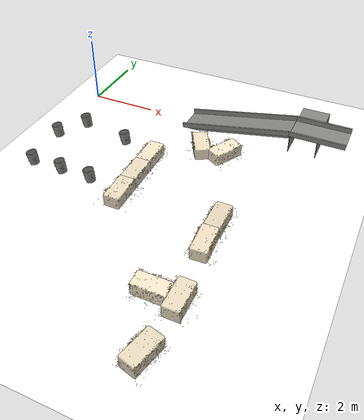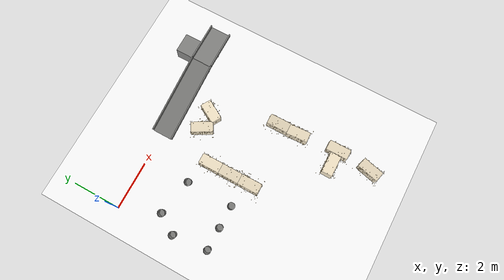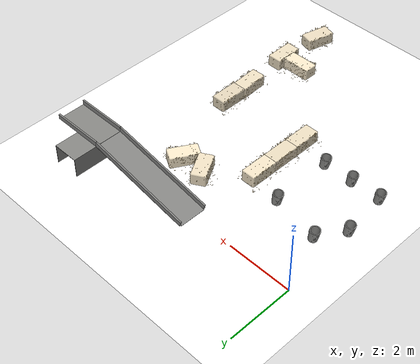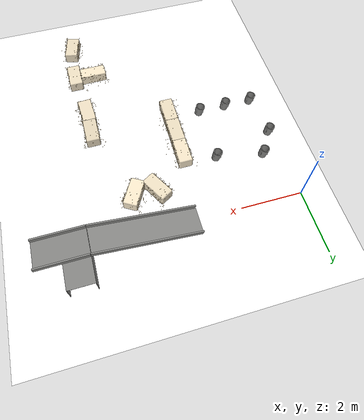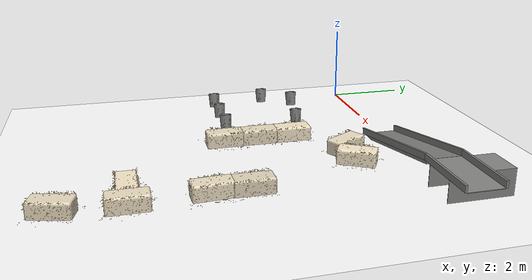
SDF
<sdf version="1.10">
 <world name="cfr_obstacle_course">
  <model name="ground">
   <static>true</static>
   <pose>0.005 -4.540 0 0 0 0</pose>
   <link name="link">
    <collision name="collision">
     <geometry><plane><normal>0 0 1</normal><size>30 24</size></plane></geometry>
     <surface>
      <friction>
       <ode><mu>50</mu></ode>
       <bullet><friction>1</friction><rolling_friction>0.001</rolling_friction></bullet>
      </friction>
     </surface>
    </collision>
    <visual name="visual">
     <geometry><plane><normal>0 0 1</normal><size>30 24</size></plane></geometry>
     <material>
      <diffuse>1 1 1 1</diffuse>
      <pbr>
       <metal>
        <albedo_map>model://cfr_arduino_bridge/materials/asphalt_obstacle.png</albedo_map>
        <roughness>0.95</roughness>
        <metalness>0</metalness>
       </metal>
      </pbr>
     </material>
    </visual>
   </link>
  </model>
  <model name="bridge">
   <static>true</static>
   <link name="link">
    <collision name="ramp_collision">
     <pose>5.0354 0.0005 0.2675 0.0000 -0.1893 0.0000</pose>
     <geometry><box><size>3.3750 0.8128 0.1000</size></box></geometry>
    </collision>
    <visual name="ramp_visual">
     <pose>5.0354 0.0005 0.2675 0.0000 -0.1893 0.0000</pose>
     <geometry><box><size>3.3750 0.8128 0.1000</size></box></geometry>
     <material><diffuse>0.52 0.52 0.51 1</diffuse></material>
    </visual>
    <collision name="ramp_rail_-1_collision">
     <pose>5.0354 -0.4309 0.3937 0.0000 -0.1893 0.0000</pose>
     <geometry><box><size>3.3750 0.0500 0.1524</size></box></geometry>
     <surface>
      <friction>
       <ode><mu>0.3</mu><mu2>0.6</mu2><fdir1>0 0 1</fdir1></ode>
       <bullet><friction>0.3</friction><friction2>0.6</friction2></bullet>
      </friction>
     </surface>
    </collision>
    <visual name="ramp_rail_-1_visual">
     <pose>5.0354 -0.4309 0.3937 0.0000 -0.1893 0.0000</pose>
     <geometry><box><size>3.3750 0.0500 0.1524</size></box></geometry>
     <material><diffuse>0.52 0.52 0.51 1</diffuse></material>
    </visual>
    <collision name="ramp_rail_1_collision">
     <pose>5.0354 0.4319 0.3937 0.0000 -0.1893 0.0000</pose>
     <geometry><box><size>3.3750 0.0500 0.1524</size></box></geometry>
     <surface>
      <friction>
       <ode><mu>0.3</mu><mu2>0.6</mu2><fdir1>0 0 1</fdir1></ode>
       <bullet><friction>0.3</friction><friction2>0.6</friction2></bullet>
      </friction>
     </surface>
    </collision>
    <visual name="ramp_rail_1_visual">
     <pose>5.0354 0.4319 0.3937 0.0000 -0.1893 0.0000</pose>
     <geometry><box><size>3.3750 0.0500 0.1524</size></box></geometry>
     <material><diffuse>0.52 0.52 0.51 1</diffuse></material>
    </visual>
    <collision name="deck_collision">
     <pose>7.4961 0.0005 0.6285 0.0000 0.0000 0.0000</pose>
     <geometry><box><size>1.6066 0.8128 0.0130</size></box></geometry>
    </collision>
    <visual name="deck_visual">
     <pose>7.4961 0.0005 0.6285 0.0000 0.0000 0.0000</pose>
     <geometry><box><size>1.6066 0.8128 0.0130</size></box></geometry>
     <material><diffuse>0.52 0.52 0.51 1</diffuse></material>
    </visual>
    <collision name="deck_rail_-1_collision">
     <pose>7.4961 -0.4309 0.7112 0.0000 0.0000 0.0000</pose>
     <geometry><box><size>1.6066 0.0500 0.1524</size></box></geometry>
     <surface>
      <friction>
       <ode><mu>0.3</mu><mu2>0.6</mu2><fdir1>0 0 1</fdir1></ode>
       <bullet><friction>0.3</friction><friction2>0.6</friction2></bullet>
      </friction>
     </surface>
    </collision>
    <visual name="deck_rail_-1_visual">
     <pose>7.4961 -0.4309 0.7112 0.0000 0.0000 0.0000</pose>
     <geometry><box><size>1.6066 0.0500 0.1524</size></box></geometry>
     <material><diffuse>0.52 0.52 0.51 1</diffuse></material>
    </visual>
    <collision name="deck_rail_1_collision">
     <pose>7.4961 0.4319 0.7112 0.0000 0.0000 0.0000</pose>
     <geometry><box><size>1.6066 0.0500 0.1524</size></box></geometry>
     <surface>
      <friction>
       <ode><mu>0.3</mu><mu2>0.6</mu2><fdir1>0 0 1</fdir1></ode>
       <bullet><friction>0.3</friction><friction2>0.6</friction2></bullet>
      </friction>
     </surface>
    </collision>
    <visual name="deck_rail_1_visual">
     <pose>7.4961 0.4319 0.7112 0.0000 0.0000 0.0000</pose>
     <geometry><box><size>1.6066 0.0500 0.1524</size></box></geometry>
     <material><diffuse>0.52 0.52 0.51 1</diffuse></material>
    </visual>
   </link>
  </model>
  <model name="tunnel">
   <static>true</static>
   <link name="link">
    <visual name="tunnel_visual">
     <pose>7.0976 0.4424 0.0000 0.0000 0.0000 1.5708</pose>
     <geometry><mesh><uri>model://cfr_arduino_bridge/meshes/tunnel.stl</uri></mesh></geometry>
     <material><diffuse>0.52 0.52 0.51 1</diffuse></material>
    </visual>
    <collision name="wall_-1_collision">
     <pose>6.6662 0.4424 0.3111 0.0000 0.0000 0.0000</pose>
     <geometry><box><size>0.0500 1.5240 0.6223</size></box></geometry>
     <surface>
      <friction>
       <ode><mu>0.3</mu><mu2>0.6</mu2><fdir1>0 0 1</fdir1></ode>
       <bullet><friction>0.3</friction><friction2>0.6</friction2></bullet>
      </friction>
     </surface>
    </collision>
    <collision name="wall_1_collision">
     <pose>7.5290 0.4424 0.3111 0.0000 0.0000 0.0000</pose>
     <geometry><box><size>0.0500 1.5240 0.6223</size></box></geometry>
     <surface>
      <friction>
       <ode><mu>0.3</mu><mu2>0.6</mu2><fdir1>0 0 1</fdir1></ode>
       <bullet><friction>0.3</friction><friction2>0.6</friction2></bullet>
      </friction>
     </surface>
    </collision>
   </link>
  </model>
  <model name="gap_bale_1">
   <static>true</static>
   <pose>3.2374 -2.3540 0 0 0 4.71239</pose>
   <link name="link">
    <collision name="bale_collision">
     <pose>0.0000 0.0000 0.1778 0.0000 0.0000 0.0000</pose>
     <geometry><box><size>0.9144 0.4572 0.3556</size></box></geometry>
     <surface>
      <friction>
       <ode><mu>0.2</mu><mu2>1.0</mu2><fdir1>0 0 1</fdir1></ode>
       <bullet><friction>0.2</friction><friction2>1.0</friction2></bullet>
      </friction>
     </surface>
    </collision>
    <visual name="bale_visual">
     <pose>0.0000 0.0000 0.1778 0.0000 0.0000 0.0000</pose>
     <geometry><mesh><uri>model://cfr_arduino_bridge/meshes/straw_bale.obj</uri></mesh></geometry>
     <material>
      <diffuse>0.950 0.893 0.779 1</diffuse>
      <specular>0.04 0.04 0.03 1</specular>
      <pbr>
       <metal>
        <albedo_map>model://cfr_arduino_bridge/materials/straw_bale_0.png</albedo_map>
        <normal_map>model://cfr_arduino_bridge/materials/straw_bale_normal.png</normal_map>
        <roughness>0.95</roughness>
        <metalness>0</metalness>
       </metal>
      </pbr>
     </material>
    </visual>
    <visual name="bale_strands">
     <pose>0.0000 0.0000 0.1778 0.0000 0.0000 0.0000</pose>
     <geometry><mesh><uri>model://cfr_arduino_bridge/meshes/bale_strands_0.stl</uri></mesh></geometry>
     <material><diffuse>0.74 0.63 0.40 1</diffuse><specular>0.05 0.05 0.04 1</specular></material>
     <cast_shadows>false</cast_shadows>
    </visual>
   </link>
  </model>
  <model name="gap_bale_2">
   <static>true</static>
   <pose>3.2374 -3.2176 0 0 0 4.71239</pose>
   <link name="link">
    <collision name="bale_collision">
     <pose>0.0000 0.0000 0.1778 0.0000 0.0000 0.0000</pose>
     <geometry><box><size>0.9144 0.4572 0.3556</size></box></geometry>
     <surface>
      <friction>
       <ode><mu>0.2</mu><mu2>1.0</mu2><fdir1>0 0 1</fdir1></ode>
       <bullet><friction>0.2</friction><friction2>1.0</friction2></bullet>
      </friction>
     </surface>
    </collision>
    <visual name="bale_visual">
     <pose>0.0000 0.0000 0.1778 0.0000 0.0000 0.0000</pose>
     <geometry><mesh><uri>model://cfr_arduino_bridge/meshes/straw_bale.obj</uri></mesh></geometry>
     <material>
      <diffuse>0.910 0.856 0.746 1</diffuse>
      <specular>0.04 0.04 0.03 1</specular>
      <pbr>
       <metal>
        <albedo_map>model://cfr_arduino_bridge/materials/straw_bale_0.png</albedo_map>
        <normal_map>model://cfr_arduino_bridge/materials/straw_bale_normal.png</normal_map>
        <roughness>0.95</roughness>
        <metalness>0</metalness>
       </metal>
      </pbr>
     </material>
    </visual>
    <visual name="bale_strands">
     <pose>0.0000 0.0000 0.1778 0.0000 0.0000 0.0000</pose>
     <geometry><mesh><uri>model://cfr_arduino_bridge/meshes/bale_strands_2.stl</uri></mesh></geometry>
     <material><diffuse>0.74 0.63 0.40 1</diffuse><specular>0.05 0.05 0.04 1</specular></material>
     <cast_shadows>false</cast_shadows>
    </visual>
   </link>
  </model>
  <model name="gap_bale_3">
   <static>true</static>
   <pose>3.2374 -4.0812 0 0 0 4.71239</pose>
   <link name="link">
    <collision name="bale_collision">
     <pose>0.0000 0.0000 0.1778 0.0000 0.0000 0.0000</pose>
     <geometry><box><size>0.9144 0.4572 0.3556</size></box></geometry>
     <surface>
      <friction>
       <ode><mu>0.2</mu><mu2>1.0</mu2><fdir1>0 0 1</fdir1></ode>
       <bullet><friction>0.2</friction><friction2>1.0</friction2></bullet>
      </friction>
     </surface>
    </collision>
    <visual name="bale_visual">
     <pose>0.0000 0.0000 0.1778 0.0000 0.0000 0.0000</pose>
     <geometry><mesh><uri>model://cfr_arduino_bridge/meshes/straw_bale.obj</uri></mesh></geometry>
     <material>
      <diffuse>0.915 0.860 0.750 1</diffuse>
      <specular>0.04 0.04 0.03 1</specular>
      <pbr>
       <metal>
        <albedo_map>model://cfr_arduino_bridge/materials/straw_bale_1.png</albedo_map>
        <normal_map>model://cfr_arduino_bridge/materials/straw_bale_normal.png</normal_map>
        <roughness>0.95</roughness>
        <metalness>0</metalness>
       </metal>
      </pbr>
     </material>
    </visual>
    <visual name="bale_strands">
     <pose>0.0000 0.0000 0.1778 0.0000 0.0000 0.0000</pose>
     <geometry><mesh><uri>model://cfr_arduino_bridge/meshes/bale_strands_3.stl</uri></mesh></geometry>
     <material><diffuse>0.74 0.63 0.40 1</diffuse><specular>0.05 0.05 0.04 1</specular></material>
     <cast_shadows>false</cast_shadows>
    </visual>
   </link>
  </model>
  <model name="wide_bale_107">
   <static>true</static>
   <pose>6.0319 -7.9883 0 0 0 4.46625</pose>
   <link name="link">
    <collision name="bale_collision">
     <pose>0.0000 0.0000 0.1778 0.0000 0.0000 0.0000</pose>
     <geometry><box><size>0.9144 0.4572 0.3556</size></box></geometry>
     <surface>
      <friction>
       <ode><mu>0.2</mu><mu2>1.0</mu2><fdir1>0 0 1</fdir1></ode>
       <bullet><friction>0.2</friction><friction2>1.0</friction2></bullet>
      </friction>
     </surface>
    </collision>
    <visual name="bale_visual">
     <pose>0.0000 0.0000 0.1778 0.0000 0.0000 0.0000</pose>
     <geometry><mesh><uri>model://cfr_arduino_bridge/meshes/straw_bale.obj</uri></mesh></geometry>
     <material>
      <diffuse>0.908 0.853 0.744 1</diffuse>
      <specular>0.04 0.04 0.03 1</specular>
      <pbr>
       <metal>
        <albedo_map>model://cfr_arduino_bridge/materials/straw_bale_0.png</albedo_map>
        <normal_map>model://cfr_arduino_bridge/materials/straw_bale_normal.png</normal_map>
        <roughness>0.95</roughness>
        <metalness>0</metalness>
       </metal>
      </pbr>
     </material>
    </visual>
    <visual name="bale_strands">
     <pose>0.0000 0.0000 0.1778 0.0000 0.0000 0.0000</pose>
     <geometry><mesh><uri>model://cfr_arduino_bridge/meshes/bale_strands_0.stl</uri></mesh></geometry>
     <material><diffuse>0.74 0.63 0.40 1</diffuse><specular>0.05 0.05 0.04 1</specular></material>
     <cast_shadows>false</cast_shadows>
    </visual>
   </link>
  </model>
  <model name="wide_bale_112">
   <static>true</static>
   <pose>6.1526 -6.5450 0 0 0 4.71239</pose>
   <link name="link">
    <collision name="bale_collision">
     <pose>0.0000 0.0000 0.1778 0.0000 0.0000 0.0000</pose>
     <geometry><box><size>0.9144 0.4572 0.3556</size></box></geometry>
     <surface>
      <friction>
       <ode><mu>0.2</mu><mu2>1.0</mu2><fdir1>0 0 1</fdir1></ode>
       <bullet><friction>0.2</friction><friction2>1.0</friction2></bullet>
      </friction>
     </surface>
    </collision>
    <visual name="bale_visual">
     <pose>0.0000 0.0000 0.1778 0.0000 0.0000 0.0000</pose>
     <geometry><mesh><uri>model://cfr_arduino_bridge/meshes/straw_bale.obj</uri></mesh></geometry>
     <material>
      <diffuse>0.919 0.864 0.753 1</diffuse>
      <specular>0.04 0.04 0.03 1</specular>
      <pbr>
       <metal>
        <albedo_map>model://cfr_arduino_bridge/materials/straw_bale_2.png</albedo_map>
        <normal_map>model://cfr_arduino_bridge/materials/straw_bale_normal.png</normal_map>
        <roughness>0.95</roughness>
        <metalness>0</metalness>
       </metal>
      </pbr>
     </material>
    </visual>
    <visual name="bale_strands">
     <pose>0.0000 0.0000 0.1778 0.0000 0.0000 0.0000</pose>
     <geometry><mesh><uri>model://cfr_arduino_bridge/meshes/bale_strands_0.stl</uri></mesh></geometry>
     <material><diffuse>0.74 0.63 0.40 1</diffuse><specular>0.05 0.05 0.04 1</specular></material>
     <cast_shadows>false</cast_shadows>
    </visual>
   </link>
  </model>
  <model name="wide_bale_113">
   <static>true</static>
   <pose>5.9945 -4.8310 0 0 0 4.77382</pose>
   <link name="link">
    <collision name="bale_collision">
     <pose>0.0000 0.0000 0.1778 0.0000 0.0000 0.0000</pose>
     <geometry><box><size>0.9144 0.4572 0.3556</size></box></geometry>
     <surface>
      <friction>
       <ode><mu>0.2</mu><mu2>1.0</mu2><fdir1>0 0 1</fdir1></ode>
       <bullet><friction>0.2</friction><friction2>1.0</friction2></bullet>
      </friction>
     </surface>
    </collision>
    <visual name="bale_visual">
     <pose>0.0000 0.0000 0.1778 0.0000 0.0000 0.0000</pose>
     <geometry><mesh><uri>model://cfr_arduino_bridge/meshes/straw_bale.obj</uri></mesh></geometry>
     <material>
      <diffuse>0.924 0.868 0.757 1</diffuse>
      <specular>0.04 0.04 0.03 1</specular>
      <pbr>
       <metal>
        <albedo_map>model://cfr_arduino_bridge/materials/straw_bale_0.png</albedo_map>
        <normal_map>model://cfr_arduino_bridge/materials/straw_bale_normal.png</normal_map>
        <roughness>0.95</roughness>
        <metalness>0</metalness>
       </metal>
      </pbr>
     </material>
    </visual>
    <visual name="bale_strands">
     <pose>0.0000 0.0000 0.1778 0.0000 0.0000 0.0000</pose>
     <geometry><mesh><uri>model://cfr_arduino_bridge/meshes/bale_strands_2.stl</uri></mesh></geometry>
     <material><diffuse>0.74 0.63 0.40 1</diffuse><specular>0.05 0.05 0.04 1</specular></material>
     <cast_shadows>false</cast_shadows>
    </visual>
   </link>
  </model>
  <model name="wide_bale_114">
   <static>true</static>
   <pose>5.9896 -3.9669 0 0 0 4.71239</pose>
   <link name="link">
    <collision name="bale_collision">
     <pose>0.0000 0.0000 0.1778 0.0000 0.0000 0.0000</pose>
     <geometry><box><size>0.9144 0.4572 0.3556</size></box></geometry>
     <surface>
      <friction>
       <ode><mu>0.2</mu><mu2>1.0</mu2><fdir1>0 0 1</fdir1></ode>
       <bullet><friction>0.2</friction><friction2>1.0</friction2></bullet>
      </friction>
     </surface>
    </collision>
    <visual name="bale_visual">
     <pose>0.0000 0.0000 0.1778 0.0000 0.0000 0.0000</pose>
     <geometry><mesh><uri>model://cfr_arduino_bridge/meshes/straw_bale.obj</uri></mesh></geometry>
     <material>
      <diffuse>0.884 0.831 0.725 1</diffuse>
      <specular>0.04 0.04 0.03 1</specular>
      <pbr>
       <metal>
        <albedo_map>model://cfr_arduino_bridge/materials/straw_bale_0.png</albedo_map>
        <normal_map>model://cfr_arduino_bridge/materials/straw_bale_normal.png</normal_map>
        <roughness>0.95</roughness>
        <metalness>0</metalness>
       </metal>
      </pbr>
     </material>
    </visual>
    <visual name="bale_strands">
     <pose>0.0000 0.0000 0.1778 0.0000 0.0000 0.0000</pose>
     <geometry><mesh><uri>model://cfr_arduino_bridge/meshes/bale_strands_0.stl</uri></mesh></geometry>
     <material><diffuse>0.74 0.63 0.40 1</diffuse><specular>0.05 0.05 0.04 1</specular></material>
     <cast_shadows>false</cast_shadows>
    </visual>
   </link>
  </model>
  <model name="wide_bale_115">
   <static>true</static>
   <pose>5.4901 -6.5407 0 0 0 6.28319</pose>
   <link name="link">
    <collision name="bale_collision">
     <pose>0.0000 0.0000 0.1778 0.0000 0.0000 0.0000</pose>
     <geometry><box><size>0.9144 0.4572 0.3556</size></box></geometry>
     <surface>
      <friction>
       <ode><mu>0.2</mu><mu2>1.0</mu2><fdir1>0 0 1</fdir1></ode>
       <bullet><friction>0.2</friction><friction2>1.0</friction2></bullet>
      </friction>
     </surface>
    </collision>
    <visual name="bale_visual">
     <pose>0.0000 0.0000 0.1778 0.0000 0.0000 0.0000</pose>
     <geometry><mesh><uri>model://cfr_arduino_bridge/meshes/straw_bale.obj</uri></mesh></geometry>
     <material>
      <diffuse>0.966 0.908 0.792 1</diffuse>
      <specular>0.04 0.04 0.03 1</specular>
      <pbr>
       <metal>
        <albedo_map>model://cfr_arduino_bridge/materials/straw_bale_0.png</albedo_map>
        <normal_map>model://cfr_arduino_bridge/materials/straw_bale_normal.png</normal_map>
        <roughness>0.95</roughness>
        <metalness>0</metalness>
       </metal>
      </pbr>
     </material>
    </visual>
    <visual name="bale_strands">
     <pose>0.0000 0.0000 0.1778 0.0000 0.0000 0.0000</pose>
     <geometry><mesh><uri>model://cfr_arduino_bridge/meshes/bale_strands_1.stl</uri></mesh></geometry>
     <material><diffuse>0.74 0.63 0.40 1</diffuse><specular>0.05 0.05 0.04 1</specular></material>
     <cast_shadows>false</cast_shadows>
    </visual>
   </link>
  </model>
  <model name="wide_bale_116">
   <static>true</static>
   <pose>5.1067 -1.3100 0 0 0 4.18879</pose>
   <link name="link">
    <collision name="bale_collision">
     <pose>0.0000 0.0000 0.1778 0.0000 0.0000 0.0000</pose>
     <geometry><box><size>0.9144 0.4572 0.3556</size></box></geometry>
     <surface>
      <friction>
       <ode><mu>0.2</mu><mu2>1.0</mu2><fdir1>0 0 1</fdir1></ode>
       <bullet><friction>0.2</friction><friction2>1.0</friction2></bullet>
      </friction>
     </surface>
    </collision>
    <visual name="bale_visual">
     <pose>0.0000 0.0000 0.1778 0.0000 0.0000 0.0000</pose>
     <geometry><mesh><uri>model://cfr_arduino_bridge/meshes/straw_bale.obj</uri></mesh></geometry>
     <material>
      <diffuse>0.970 0.912 0.795 1</diffuse>
      <specular>0.04 0.04 0.03 1</specular>
      <pbr>
       <metal>
        <albedo_map>model://cfr_arduino_bridge/materials/straw_bale_1.png</albedo_map>
        <normal_map>model://cfr_arduino_bridge/materials/straw_bale_normal.png</normal_map>
        <roughness>0.95</roughness>
        <metalness>0</metalness>
       </metal>
      </pbr>
     </material>
    </visual>
    <visual name="bale_strands">
     <pose>0.0000 0.0000 0.1778 0.0000 0.0000 0.0000</pose>
     <geometry><mesh><uri>model://cfr_arduino_bridge/meshes/bale_strands_3.stl</uri></mesh></geometry>
     <material><diffuse>0.74 0.63 0.40 1</diffuse><specular>0.05 0.05 0.04 1</specular></material>
     <cast_shadows>false</cast_shadows>
    </visual>
   </link>
  </model>
  <model name="wide_bale_117">
   <static>true</static>
   <pose>4.3608 -1.3055 0 0 0 5.23599</pose>
   <link name="link">
    <collision name="bale_collision">
     <pose>0.0000 0.0000 0.1778 0.0000 0.0000 0.0000</pose>
     <geometry><box><size>0.9144 0.4572 0.3556</size></box></geometry>
     <surface>
      <friction>
       <ode><mu>0.2</mu><mu2>1.0</mu2><fdir1>0 0 1</fdir1></ode>
       <bullet><friction>0.2</friction><friction2>1.0</friction2></bullet>
      </friction>
     </surface>
    </collision>
    <visual name="bale_visual">
     <pose>0.0000 0.0000 0.1778 0.0000 0.0000 0.0000</pose>
     <geometry><mesh><uri>model://cfr_arduino_bridge/meshes/straw_bale.obj</uri></mesh></geometry>
     <material>
      <diffuse>0.930 0.874 0.762 1</diffuse>
      <specular>0.04 0.04 0.03 1</specular>
      <pbr>
       <metal>
        <albedo_map>model://cfr_arduino_bridge/materials/straw_bale_1.png</albedo_map>
        <normal_map>model://cfr_arduino_bridge/materials/straw_bale_normal.png</normal_map>
        <roughness>0.95</roughness>
        <metalness>0</metalness>
       </metal>
      </pbr>
     </material>
    </visual>
    <visual name="bale_strands">
     <pose>0.0000 0.0000 0.1778 0.0000 0.0000 0.0000</pose>
     <geometry><mesh><uri>model://cfr_arduino_bridge/meshes/bale_strands_1.stl</uri></mesh></geometry>
     <material><diffuse>0.74 0.63 0.40 1</diffuse><specular>0.05 0.05 0.04 1</specular></material>
     <cast_shadows>false</cast_shadows>
    </visual>
   </link>
  </model>
  <model name="bucket_0">
   <static>true</static>
   <pose>2.1586 -3.8653 0 0 0 0</pose>
   <link name="link">
    <visual name="bucket_visual">
     <geometry><mesh><uri>model://cfr_arduino_bridge/meshes/bucket.stl</uri></mesh></geometry>
     <material><diffuse>0.52 0.52 0.51 1</diffuse></material>
    </visual>
    <collision name="body_collision">
     <pose>0.0000 0.0000 0.1900 0.0000 0.0000 0.0000</pose>
     <geometry><cylinder><radius>0.1450</radius><length>0.3800</length></cylinder></geometry>
    </collision>
   </link>
  </model>
  <model name="bucket_1">
   <static>true</static>
   <pose>0.2789 -3.8653 0 0 0 0</pose>
   <link name="link">
    <visual name="bucket_visual">
     <geometry><mesh><uri>model://cfr_arduino_bridge/meshes/bucket.stl</uri></mesh></geometry>
     <material><diffuse>0.52 0.52 0.51 1</diffuse></material>
    </visual>
    <collision name="body_collision">
     <pose>0.0000 0.0000 0.1900 0.0000 0.0000 0.0000</pose>
     <geometry><cylinder><radius>0.1450</radius><length>0.3800</length></cylinder></geometry>
    </collision>
   </link>
  </model>
  <model name="bucket_2">
   <static>true</static>
   <pose>0.6346 -1.6427 0 0 0 0</pose>
   <link name="link">
    <visual name="bucket_visual">
     <geometry><mesh><uri>model://cfr_arduino_bridge/meshes/bucket.stl</uri></mesh></geometry>
     <material><diffuse>0.52 0.52 0.51 1</diffuse></material>
    </visual>
    <collision name="body_collision">
     <pose>0.0000 0.0000 0.1900 0.0000 0.0000 0.0000</pose>
     <geometry><cylinder><radius>0.1450</radius><length>0.3800</length></cylinder></geometry>
    </collision>
   </link>
  </model>
  <model name="bucket_3">
   <static>true</static>
   <pose>2.1626 -1.9353 0 0 0 0</pose>
   <link name="link">
    <visual name="bucket_visual">
     <geometry><mesh><uri>model://cfr_arduino_bridge/meshes/bucket.stl</uri></mesh></geometry>
     <material><diffuse>0.52 0.52 0.51 1</diffuse></material>
    </visual>
    <collision name="body_collision">
     <pose>0.0000 0.0000 0.1900 0.0000 0.0000 0.0000</pose>
     <geometry><cylinder><radius>0.1450</radius><length>0.3800</length></cylinder></geometry>
    </collision>
   </link>
  </model>
  <model name="bucket_4">
   <static>true</static>
   <pose>0.1265 -2.4300 0 0 0 0</pose>
   <link name="link">
    <visual name="bucket_visual">
     <geometry><mesh><uri>model://cfr_arduino_bridge/meshes/bucket.stl</uri></mesh></geometry>
     <material><diffuse>0.52 0.52 0.51 1</diffuse></material>
    </visual>
    <collision name="body_collision">
     <pose>0.0000 0.0000 0.1900 0.0000 0.0000 0.0000</pose>
     <geometry><cylinder><radius>0.1450</radius><length>0.3800</length></cylinder></geometry>
    </collision>
   </link>
  </model>
  <model name="bucket_5">
   <static>true</static>
   <pose>1.2186 -3.8653 0 0 0 0</pose>
   <link name="link">
    <visual name="bucket_visual">
     <geometry><mesh><uri>model://cfr_arduino_bridge/meshes/bucket.stl</uri></mesh></geometry>
     <material><diffuse>0.52 0.52 0.51 1</diffuse></material>
    </visual>
    <collision name="body_collision">
     <pose>0.0000 0.0000 0.1900 0.0000 0.0000 0.0000</pose>
     <geometry><cylinder><radius>0.1450</radius><length>0.3800</length></cylinder></geometry>
    </collision>
   </link>
  </model>
 </world>
</sdf>
